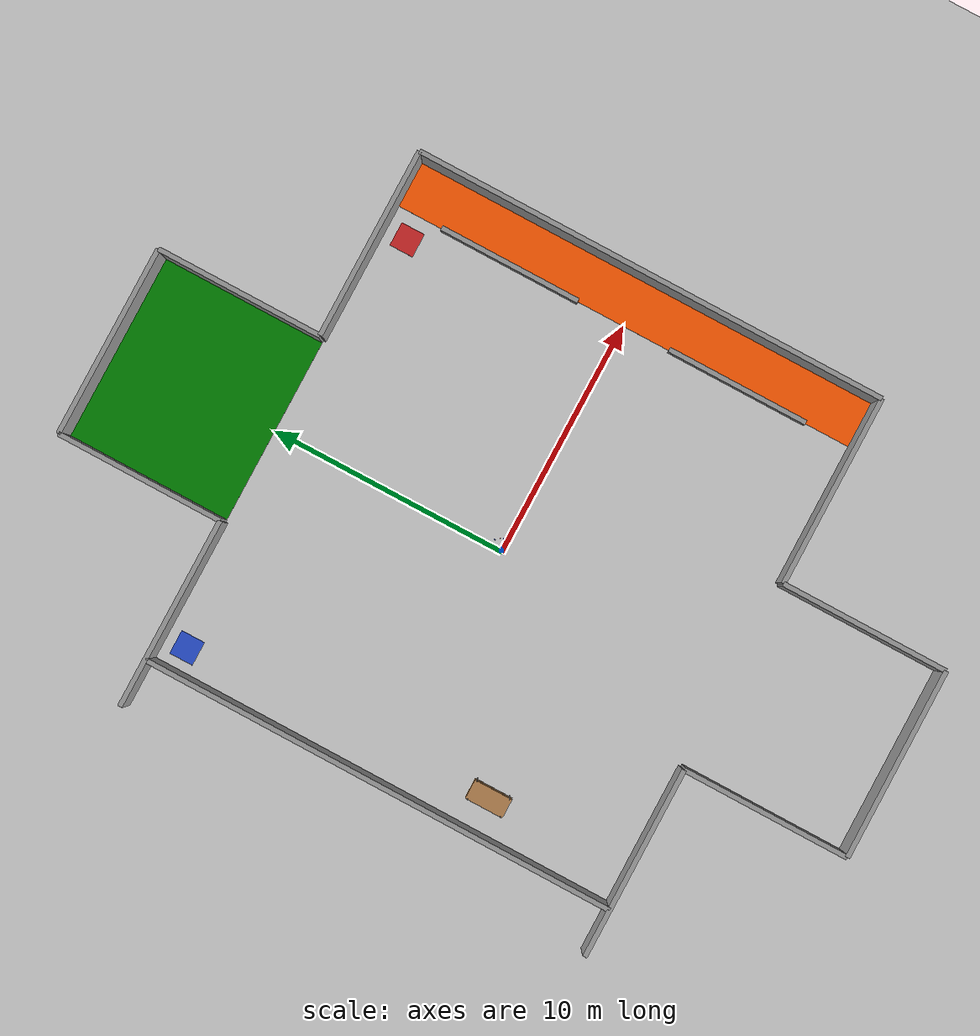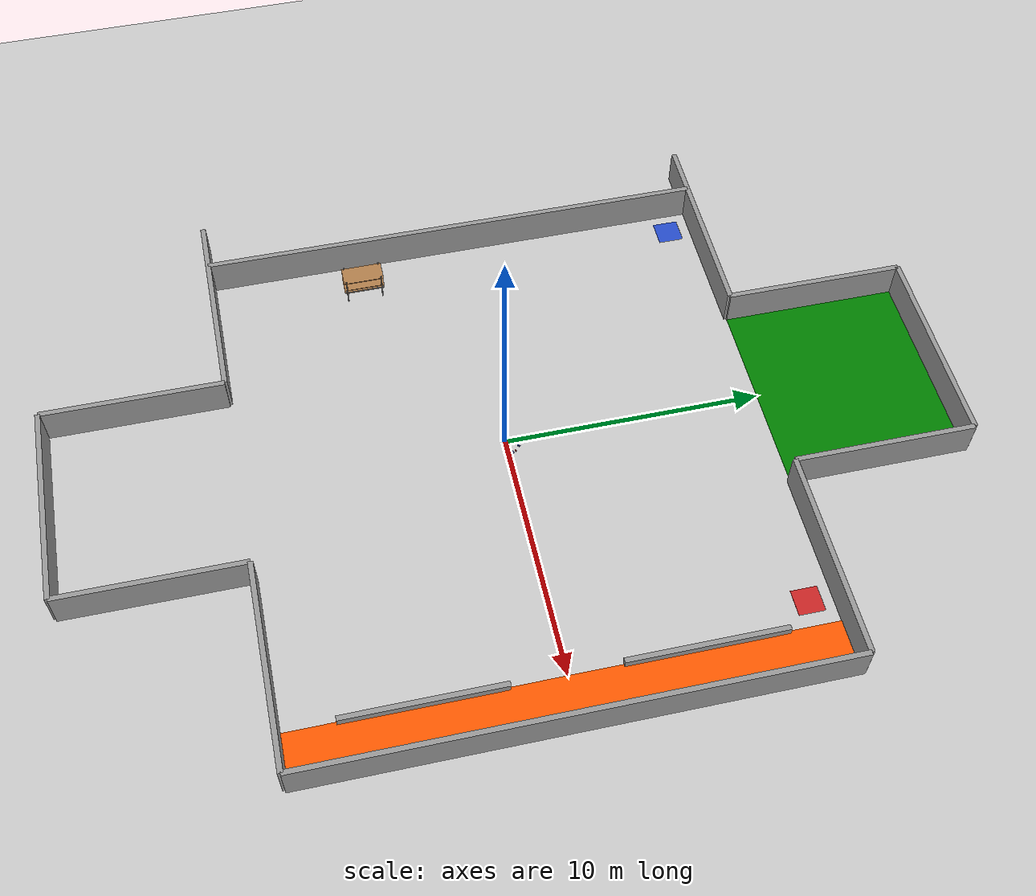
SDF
<sdf version="1.7">
 <world name="default">
  <model name="ground_plane">
   <static>1</static>
   <link name="link">
    <collision name="collision">
     <geometry><plane><normal>0 0 1</normal><size>100 100</size></plane></geometry>
     <surface>
      <contact><collide_bitmask>65535</collide_bitmask></contact>
      <friction><ode><mu>100</mu><mu2>50</mu2></ode></friction>
     </surface>
    </collision>
    <visual name="visual">
     <cast_shadows>0</cast_shadows>
     <geometry><plane><normal>0 0 1</normal><size>100 100</size></plane></geometry>
     <material>
      <script><uri>file://media/materials/scripts/gazebo.material</uri><name>Gazebo/Grey</name></script>
     </material>
    </visual>
   </link>
  </model>
  <model name="warehouse_walls">
   <static>1</static>
   <link name="wall1_link">
    <pose>-10 0 0 0 -0 1.57</pose>
    <collision name="collision"><geometry><box><size>20 0.2 2.8</size></box></geometry></collision>
    <visual name="wall1_visual">
     <cast_shadows>0</cast_shadows>
     <geometry><box><size>20 0.2 2.8</size></box></geometry>
     <material>
      <script>
       <uri>model://grey_wall/materials/scripts</uri>
       <uri>model://grey_wall/materials/textures</uri>
       <name>vrc/grey_wall</name>
      </script>
     </material>
    </visual>
   </link>
   <link name="wall2_link2">
    <pose>8 -10 0 0 -0 0</pose>
    <collision name="wall2_collision2"><geometry><box><size>8 0.2 2.8</size></box></geometry></collision>
    <visual name="wall2_visual2">
     <cast_shadows>0</cast_shadows>
     <geometry><box><size>8 0.2 2.8</size></box></geometry>
     <material>
      <script>
       <uri>model://grey_wall/materials/scripts</uri>
       <uri>model://grey_wall/materials/textures</uri>
       <name>vrc/grey_wall</name>
      </script>
     </material>
    </visual>
   </link>
   <link name="wall2_link3">
    <pose>4 -13.5 0 0 -0 1.57</pose>
    <collision name="wall2_collision3"><geometry><box><size>7 0.2 2.8</size></box></geometry></collision>
    <visual name="wall2_visual3">
     <cast_shadows>0</cast_shadows>
     <geometry><box><size>7 0.2 2.8</size></box></geometry>
     <material>
      <script>
       <uri>model://grey_wall/materials/scripts</uri>
       <uri>model://grey_wall/materials/textures</uri>
       <name>vrc/grey_wall</name>
      </script>
     </material>
    </visual>
   </link>
   <link name="wall2_link4">
    <pose>0 -17 0 0 -0 0</pose>
    <collision name="wall2_collision4"><geometry><box><size>8 0.2 2.8</size></box></geometry></collision>
    <visual name="wall2_visual4">
     <cast_shadows>0</cast_shadows>
     <geometry><box><size>8 0.2 2.8</size></box></geometry>
     <material>
      <script>
       <uri>model://grey_wall/materials/scripts</uri>
       <uri>model://grey_wall/materials/textures</uri>
       <name>vrc/grey_wall</name>
      </script>
     </material>
    </visual>
   </link>
   <link name="wall2_link5">
    <pose>-4 -13.5 0 0 -0 1.57</pose>
    <collision name="wall2_collision5"><geometry><box><size>7 0.2 2.8</size></box></geometry></collision>
    <visual name="wall2_visual5">
     <cast_shadows>0</cast_shadows>
     <geometry><box><size>7 0.2 2.8</size></box></geometry>
     <material>
      <script>
       <uri>model://grey_wall/materials/scripts</uri>
       <uri>model://grey_wall/materials/textures</uri>
       <name>vrc/grey_wall</name>
      </script>
     </material>
    </visual>
   </link>
   <link name="wall2_link6">
    <pose>-8 -10 0 0 -0 0</pose>
    <collision name="wall2_collision6"><geometry><box><size>8 0.2 2.8</size></box></geometry></collision>
    <visual name="wall2_visual6">
     <cast_shadows>0</cast_shadows>
     <geometry><box><size>8 0.2 2.8</size></box></geometry>
     <material>
      <script>
       <uri>model://grey_wall/materials/scripts</uri>
       <uri>model://grey_wall/materials/textures</uri>
       <name>vrc/grey_wall</name>
      </script>
     </material>
    </visual>
   </link>
   <link name="output_area">
    <pose>0 13.5 0 0 -0 0</pose>
    <visual name="visual_output_area">
     <cast_shadows>0</cast_shadows>
     <geometry><plane><normal>0 0 1</normal><size>8 7</size></plane></geometry>
     <material>
      <ambient>0 0.5 0 1</ambient>
      <diffuse>0 0.5 0 1</diffuse>
      <specular>0 0 0 1</specular>
      <emissive>0 0 0 0</emissive>
     </material>
    </visual>
   </link>
   <link name="wall3_link2">
    <pose>8 10 0 0 -0 0</pose>
    <collision name="wall3_collision2"><geometry><box><size>8 0.2 2.8</size></box></geometry></collision>
    <visual name="wall3_visual2">
     <cast_shadows>0</cast_shadows>
     <geometry><box><size>8 0.2 2.8</size></box></geometry>
     <material>
      <script>
       <uri>model://grey_wall/materials/scripts</uri>
       <uri>model://grey_wall/materials/textures</uri>
       <name>vrc/grey_wall</name>
      </script>
     </material>
    </visual>
   </link>
   <link name="wall3_link3">
    <pose>4 13.5 0 0 -0 1.57</pose>
    <collision name="wall3_collision3"><geometry><box><size>7 0.2 2.8</size></box></geometry></collision>
    <visual name="wall3_visual3">
     <cast_shadows>0</cast_shadows>
     <geometry><box><size>7 0.2 2.8</size></box></geometry>
     <material>
      <script>
       <uri>model://grey_wall/materials/scripts</uri>
       <uri>model://grey_wall/materials/textures</uri>
       <name>vrc/grey_wall</name>
      </script>
     </material>
    </visual>
   </link>
   <link name="wall3_link4">
    <pose>0 17 0 0 -0 0</pose>
    <collision name="wall3_collision4"><geometry><box><size>8 0.2 2.8</size></box></geometry></collision>
    <visual name="wall3_visual4">
     <cast_shadows>0</cast_shadows>
     <geometry><box><size>8 0.2 2.8</size></box></geometry>
     <material>
      <script>
       <uri>model://grey_wall/materials/scripts</uri>
       <uri>model://grey_wall/materials/textures</uri>
       <name>vrc/grey_wall</name>
      </script>
     </material>
    </visual>
   </link>
   <link name="wall3_link5">
    <pose>-4 13.5 0 0 -0 1.57</pose>
    <collision name="wall3_collision5"><geometry><box><size>7 0.2 2.8</size></box></geometry></collision>
    <visual name="wall3_visual5">
     <cast_shadows>0</cast_shadows>
     <geometry><box><size>7 0.2 2.8</size></box></geometry>
     <material>
      <script>
       <uri>model://grey_wall/materials/scripts</uri>
       <uri>model://grey_wall/materials/textures</uri>
       <name>vrc/grey_wall</name>
      </script>
     </material>
    </visual>
   </link>
   <link name="wall3_link6">
    <pose>-8 10 0 0 -0 0</pose>
    <collision name="wall3_collision6"><geometry><box><size>8 0.2 2.8</size></box></geometry></collision>
    <visual name="wall3_visual6">
     <cast_shadows>0</cast_shadows>
     <geometry><box><size>8 0.2 2.8</size></box></geometry>
     <material>
      <script>
       <uri>model://grey_wall/materials/scripts</uri>
       <uri>model://grey_wall/materials/textures</uri>
       <name>vrc/grey_wall</name>
      </script>
     </material>
    </visual>
   </link>
   <link name="wall4_link">
    <pose>12 0 0 0 -0 1.57</pose>
    <collision name="wall4_collision"><geometry><box><size>20 0.2 2.8</size></box></geometry></collision>
    <visual name="wall4_visual">
     <cast_shadows>0</cast_shadows>
     <geometry><box><size>20 0.2 2.8</size></box></geometry>
     <material>
      <script>
       <uri>model://grey_wall/materials/scripts</uri>
       <uri>model://grey_wall/materials/textures</uri>
       <name>vrc/grey_wall</name>
      </script>
     </material>
    </visual>
   </link>
   <link name="wall5_link1">
    <pose>10 -5 0 0 -0 1.57</pose>
    <collision name="wall5_collision1"><geometry><box><size>6 0.2 0.6</size></box></geometry></collision>
    <visual name="wall5_visual1">
     <cast_shadows>0</cast_shadows>
     <geometry><box><size>6 0.2 0.6</size></box></geometry>
     <material>
      <script>
       <uri>model://grey_wall/materials/scripts</uri>
       <uri>model://grey_wall/materials/textures</uri>
       <name>vrc/grey_wall</name>
      </script>
     </material>
    </visual>
   </link>
   <link name="wall5_link2">
    <pose>10 5 0 0 -0 1.57</pose>
    <collision name="wall5_collision2"><geometry><box><size>6 0.2 0.6</size></box></geometry></collision>
    <visual name="wall5_visual2">
     <cast_shadows>0</cast_shadows>
     <geometry><box><size>6 0.2 0.6</size></box></geometry>
     <material>
      <script>
       <uri>model://grey_wall/materials/scripts</uri>
       <uri>model://grey_wall/materials/textures</uri>
       <name>vrc/grey_wall</name>
      </script>
     </material>
    </visual>
   </link>
   <link name="resting_area">
    <pose>11 0 0 0 -0 1.57</pose>
    <visual name="visual_resting_area">
     <cast_shadows>0</cast_shadows>
     <geometry><plane><normal>0 0 1</normal><size>20 2</size></plane></geometry>
     <material>
      <ambient>1 0.35 0 1</ambient>
      <diffuse>1 0.35 0 1</diffuse>
      <specular>0 0 0 1</specular>
      <emissive>0 0 0 0</emissive>
     </material>
    </visual>
   </link>
  </model>
  <model name="red1">
   <link name="link">
    <inertial>
     <mass>0.1</mass>
     <inertia><ixx>0.16667</ixx><ixy>0</ixy><ixz>0</ixz><iyy>0.16667</iyy><iyz>0</iyz><izz>0.16667</izz></inertia>
    </inertial>
    <visual name="visual">
     <geometry><box><size>0.09433 0.024 0.07</size></box></geometry>
     <material>
      <script><name>Gazebo/Red</name><uri>file://media/materials/scripts/gazebo.material</uri></script>
      <shader type="vertex"><normal_map>__default__</normal_map></shader>
     </material>
    </visual>
    <collision name="collision">
     <max_contacts>50</max_contacts>
     <geometry><box><size>0.09433 0.024 0.07</size></box></geometry>
     <surface>
      <friction>
       <ode><mu>0.998</mu><mu2>0.998</mu2><fdir1>0 0 0</fdir1><slip1>0</slip1><slip2>0</slip2></ode>
      </friction>
      <bounce><restitution_coefficient>0</restitution_coefficient><threshold>100000</threshold></bounce>
      <contact>
       <ode>
        <soft_cfm>0</soft_cfm>
        <soft_erp>0.2</soft_erp>
        <kp>100000</kp>
        <kd>1</kd>
        <max_vel>100</max_vel>
        <min_depth>0.001</min_depth>
       </ode>
      </contact>
     </surface>
    </collision>
   </link>
   <static>0</static>
   <allow_auto_disable>0</allow_auto_disable>
   <pose>0.583518 0.007 6e-06 6e-06 -4.8e-05 -2.1e-05</pose>
  </model>
  <model name="red3">
   <link name="link">
    <inertial>
     <mass>0.1</mass>
     <inertia><ixx>0.16667</ixx><ixy>0</ixy><ixz>0</ixz><iyy>0.16667</iyy><iyz>0</iyz><izz>0.16667</izz></inertia>
    </inertial>
    <visual name="visual">
     <geometry><box><size>0.09433 0.024 0.07</size></box></geometry>
     <material>
      <script><name>Gazebo/Red</name><uri>file://media/materials/scripts/gazebo.material</uri></script>
      <shader type="vertex"><normal_map>__default__</normal_map></shader>
     </material>
    </visual>
    <collision name="collision">
     <max_contacts>50</max_contacts>
     <geometry><box><size>0.09433 0.024 0.07</size></box></geometry>
     <surface>
      <friction>
       <ode><mu>0.998</mu><mu2>0.998</mu2><fdir1>0 0 0</fdir1><slip1>0</slip1><slip2>0</slip2></ode>
      </friction>
      <bounce><restitution_coefficient>0</restitution_coefficient><threshold>100000</threshold></bounce>
      <contact>
       <ode>
        <soft_cfm>0</soft_cfm>
        <soft_erp>0.2</soft_erp>
        <kp>100000</kp>
        <kd>1</kd>
        <max_vel>100</max_vel>
        <min_depth>0.001</min_depth>
       </ode>
      </contact>
     </surface>
    </collision>
   </link>
   <static>0</static>
   <allow_auto_disable>0</allow_auto_disable>
   <pose>0.502 0.314314 6e-06 6e-06 -4.8e-05 0.476497</pose>
  </model>
  <model name="blue2">
   <link name="link">
    <inertial>
     <mass>0.1</mass>
     <inertia><ixx>0.16667</ixx><ixy>0</ixy><ixz>0</ixz><iyy>0.16667</iyy><iyz>0</iyz><izz>0.16667</izz></inertia>
    </inertial>
    <visual name="visual">
     <geometry><box><size>0.09433 0.024 0.07</size></box></geometry>
     <material>
      <script><name>Gazebo/Blue</name><uri>file://media/materials/scripts/gazebo.material</uri></script>
      <shader type="vertex"><normal_map>__default__</normal_map></shader>
     </material>
    </visual>
    <collision name="collision">
     <max_contacts>50</max_contacts>
     <geometry><box><size>0.09433 0.024 0.07</size></box></geometry>
     <surface>
      <friction>
       <ode><mu>0.998</mu><mu2>0.998</mu2><fdir1>0 0 0</fdir1><slip1>0</slip1><slip2>0</slip2></ode>
      </friction>
      <bounce><restitution_coefficient>0</restitution_coefficient><threshold>100000</threshold></bounce>
      <contact>
       <ode>
        <soft_cfm>0</soft_cfm>
        <soft_erp>0.2</soft_erp>
        <kp>100000</kp>
        <kd>1</kd>
        <max_vel>100</max_vel>
        <min_depth>0.001</min_depth>
       </ode>
      </contact>
     </surface>
    </collision>
   </link>
   <static>0</static>
   <allow_auto_disable>0</allow_auto_disable>
   <pose>0.551327 0.194528 0.033998 4.2e-05 0 0.318925</pose>
  </model>
  <model name="blue4">
   <link name="link">
    <inertial>
     <mass>0.1</mass>
     <inertia><ixx>0.16667</ixx><ixy>0</ixy><ixz>0</ixz><iyy>0.16667</iyy><iyz>0</iyz><izz>0.16667</izz></inertia>
    </inertial>
    <visual name="visual">
     <geometry><box><size>0.09433 0.024 0.07</size></box></geometry>
     <material>
      <script><name>Gazebo/Blue</name><uri>file://media/materials/scripts/gazebo.material</uri></script>
      <shader type="vertex"><normal_map>__default__</normal_map></shader>
     </material>
    </visual>
    <collision name="collision">
     <max_contacts>50</max_contacts>
     <geometry><box><size>0.09433 0.024 0.07</size></box></geometry>
     <surface>
      <friction>
       <ode><mu>0.998</mu><mu2>0.998</mu2><fdir1>0 0 0</fdir1><slip1>0</slip1><slip2>0</slip2></ode>
      </friction>
      <bounce><restitution_coefficient>0</restitution_coefficient><threshold>100000</threshold></bounce>
      <contact>
       <ode>
        <soft_cfm>0</soft_cfm>
        <soft_erp>0.2</soft_erp>
        <kp>100000</kp>
        <kd>1</kd>
        <max_vel>100</max_vel>
        <min_depth>0.001</min_depth>
       </ode>
      </contact>
     </surface>
    </collision>
   </link>
   <static>0</static>
   <allow_auto_disable>0</allow_auto_disable>
   <pose>0.326427 0.475072 0.033998 4.2e-05 -0 0.9453</pose>
  </model>
  <model name="destination_1">
   <link name="link">
    <inertial>
     <mass>0.1</mass>
     <inertia>
      <ixx>0.166667</ixx>
      <ixy>0</ixy>
      <ixz>0</ixz>
      <iyy>0.166667</iyy>
      <iyz>0</iyz>
      <izz>0.166667</izz>
     </inertia>
    </inertial>
    <visual name="visual">
     <geometry><box><size>1 1 0.001</size></box></geometry>
     <material>
      <script><name>Gazebo/Blue</name><uri>file://media/materials/scripts/gazebo.material</uri></script>
      <shader type="vertex"><normal_map>__default__</normal_map></shader>
     </material>
    </visual>
    <collision name="collision">
     <geometry><box><size>1 1 0</size></box></geometry>
     <surface>
      <friction>
       <ode><mu>0.998</mu><mu2>0.998</mu2><fdir1>0 0 0</fdir1><slip1>0</slip1><slip2>0</slip2></ode>
      </friction>
      <bounce><restitution_coefficient>0</restitution_coefficient><threshold>100000</threshold></bounce>
      <contact>
       <ode>
        <soft_cfm>0</soft_cfm>
        <soft_erp>0.2</soft_erp>
        <kp>100000</kp>
        <kd>1</kd>
        <max_vel>100</max_vel>
        <min_depth>0.001</min_depth>
       </ode>
      </contact>
     </surface>
    </collision>
   </link>
   <static>1</static>
   <pose>-9 9 0 0 -0 0</pose>
  </model>
  <model name="destination_2">
   <link name="link">
    <inertial>
     <mass>0.1</mass>
     <inertia>
      <ixx>0.166667</ixx>
      <ixy>0</ixy>
      <ixz>0</ixz>
      <iyy>0.166667</iyy>
      <iyz>0</iyz>
      <izz>0.166667</izz>
     </inertia>
    </inertial>
    <visual name="visual">
     <geometry><box><size>1 1 0.001</size></box></geometry>
     <material>
      <script><name>Gazebo/Red</name><uri>file://media/materials/scripts/gazebo.material</uri></script>
      <shader type="vertex"><normal_map>__default__</normal_map></shader>
     </material>
    </visual>
    <collision name="collision">
     <geometry><box><size>1 1 0</size></box></geometry>
     <surface>
      <friction>
       <ode><mu>0.998</mu><mu2>0.998</mu2><fdir1>0 0 0</fdir1><slip1>0</slip1><slip2>0</slip2></ode>
      </friction>
      <bounce><restitution_coefficient>0</restitution_coefficient><threshold>100000</threshold></bounce>
      <contact>
       <ode>
        <soft_cfm>0</soft_cfm>
        <soft_erp>0.2</soft_erp>
        <kp>100000</kp>
        <kd>1</kd>
        <max_vel>100</max_vel>
        <min_depth>0.001</min_depth>
       </ode>
      </contact>
     </surface>
    </collision>
   </link>
   <static>1</static>
   <pose>9 9 0 0 -0 0</pose>
  </model>
  <model name="pallet_set0_clone_3">
   <link name="warehouse_pallet::warehouse_pallet::link">
    <pose>0 0 0 0 -0 1.57</pose>
    <inertial>
     <inertia>
      <ixx>0.0267042</ixx>
      <ixy>0</ixy>
      <ixz>0</ixz>
      <iyy>0.0937875</iyy>
      <iyz>0</iyz>
      <izz>0.120417</izz>
     </inertia>
     <mass>0.1</mass>
    </inertial>
    <visual name="front_left_leg">
     <pose>0.7 0.38 0.5 0 -0 0</pose>
     <geometry><cylinder><radius>0.02</radius><length>1.2</length></cylinder></geometry>
     <material>
      <script><uri>file://media/materials/scripts/gazebo.material</uri><name>Gazebo/Grey</name></script>
      <shader type="pixel"><normal_map>__default__</normal_map></shader>
      <ambient>0.3 0.3 0.3 1</ambient>
      <diffuse>0.7 0.7 0.7 1</diffuse>
      <specular>0.01 0.01 0.01 1</specular>
      <emissive>0 0 0 1</emissive>
     </material>
    </visual>
    <visual name="back_left_leg">
     <pose>-0.7 0.38 0.5 0 -0 0</pose>
     <geometry><cylinder><radius>0.02</radius><length>1.2</length></cylinder></geometry>
     <material>
      <script><uri>file://media/materials/scripts/gazebo.material</uri><name>Gazebo/Grey</name></script>
      <shader type="pixel"><normal_map>__default__</normal_map></shader>
      <ambient>0.3 0.3 0.3 1</ambient>
      <diffuse>0.7 0.7 0.7 1</diffuse>
      <specular>0.01 0.01 0.01 1</specular>
      <emissive>0 0 0 1</emissive>
     </material>
    </visual>
    <visual name="holding1_visual">
     <pose>0 0.39 0.45 0 -0 0</pose>
     <geometry><box><size>1.6 0.02 0.05</size></box></geometry>
     <material>
      <script><uri>file://media/materials/scripts/gazebo.material</uri><name>Gazebo/Grey</name></script>
      <shader type="pixel"><normal_map>__default__</normal_map></shader>
      <ambient>0.3 0.3 0.3 1</ambient>
      <diffuse>0.7 0.7 0.7 1</diffuse>
      <specular>0.01 0.01 0.01 1</specular>
      <emissive>0 0 0 1</emissive>
     </material>
    </visual>
    <visual name="visual1">
     <pose>0 0 0.45 0 -0 0</pose>
     <geometry><box><size>1.6 0.8 0.03</size></box></geometry>
     <material>
      <script><uri>file://media/materials/scripts/gazebo.material</uri><name>Gazebo/Wood</name></script>
      <shader type="pixel"><normal_map>__default__</normal_map></shader>
      <ambient>1 1 1 1</ambient>
      <diffuse>1 1 1 1</diffuse>
      <specular>0.2 0.2 0.2 1</specular>
      <emissive>0 0 0 1</emissive>
     </material>
    </visual>
    <visual name="holding2_visual">
     <pose>0 -0.39 0.45 0 -0 0</pose>
     <geometry><box><size>1.6 0.02 0.05</size></box></geometry>
     <material>
      <script><uri>file://media/materials/scripts/gazebo.material</uri><name>Gazebo/Grey</name></script>
      <shader type="pixel"><normal_map>__default__</normal_map></shader>
      <ambient>0.3 0.3 0.3 1</ambient>
      <diffuse>0.7 0.7 0.7 1</diffuse>
      <specular>0.01 0.01 0.01 1</specular>
      <emissive>0 0 0 1</emissive>
     </material>
    </visual>
    <visual name="holding3_visual">
     <pose>0.735 0 0.45 0 -0 1.57</pose>
     <geometry><box><size>0.8 0.02 0.05</size></box></geometry>
     <material>
      <script><uri>file://media/materials/scripts/gazebo.material</uri><name>Gazebo/Grey</name></script>
      <shader type="pixel"><normal_map>__default__</normal_map></shader>
      <ambient>0.3 0.3 0.3 1</ambient>
      <diffuse>0.7 0.7 0.7 1</diffuse>
      <specular>0.01 0.01 0.01 1</specular>
      <emissive>0 0 0 1</emissive>
     </material>
    </visual>
    <visual name="holding4_visual">
     <pose>-0.735 0 0.45 0 -0 1.57</pose>
     <geometry><box><size>0.8 0.02 0.05</size></box></geometry>
     <material>
      <script><uri>file://media/materials/scripts/gazebo.material</uri><name>Gazebo/Grey</name></script>
      <shader type="pixel"><normal_map>__default__</normal_map></shader>
      <ambient>0.3 0.3 0.3 1</ambient>
      <diffuse>0.7 0.7 0.7 1</diffuse>
      <specular>0.01 0.01 0.01 1</specular>
      <emissive>0 0 0 1</emissive>
     </material>
    </visual>
    <visual name="visual2">
     <pose>0 0 0.6 0 -0 0</pose>
     <geometry><box><size>1.6 0.8 0.03</size></box></geometry>
     <material>
      <script><uri>file://media/materials/scripts/gazebo.material</uri><name>Gazebo/Wood</name></script>
      <shader type="pixel"><normal_map>__default__</normal_map></shader>
      <ambient>1 1 1 1</ambient>
      <diffuse>1 1 1 1</diffuse>
      <specular>0.2 0.2 0.2 1</specular>
      <emissive>0 0 0 1</emissive>
     </material>
    </visual>
    <visual name="visual3">
     <pose>0 0 1 0 -0 0</pose>
     <geometry><box><size>1.6 0.8 0.03</size></box></geometry>
     <material>
      <script><uri>file://media/materials/scripts/gazebo.material</uri><name>Gazebo/Wood</name></script>
      <shader type="pixel"><normal_map>__default__</normal_map></shader>
      <ambient>1 1 1 1</ambient>
      <diffuse>1 1 1 1</diffuse>
      <specular>0.2 0.2 0.2 1</specular>
      <emissive>0 0 0 1</emissive>
     </material>
    </visual>
    <visual name="back_right_leg">
     <pose>-0.7 -0.38 0.5 0 -0 0</pose>
     <geometry><cylinder><radius>0.02</radius><length>1.2</length></cylinder></geometry>
     <material>
      <script><uri>file://media/materials/scripts/gazebo.material</uri><name>Gazebo/Grey</name></script>
      <shader type="pixel"><normal_map>__default__</normal_map></shader>
      <ambient>0.3 0.3 0.3 1</ambient>
      <diffuse>0.7 0.7 0.7 1</diffuse>
      <specular>0.01 0.01 0.01 1</specular>
      <emissive>0 0 0 1</emissive>
     </material>
    </visual>
    <visual name="front_right_leg">
     <pose>0.7 -0.38 0.5 0 -0 0</pose>
     <geometry><cylinder><radius>0.02</radius><length>1.2</length></cylinder></geometry>
     <material>
      <script><uri>file://media/materials/scripts/gazebo.material</uri><name>Gazebo/Grey</name></script>
      <shader type="pixel"><normal_map>__default__</normal_map></shader>
      <ambient>0.3 0.3 0.3 1</ambient>
      <diffuse>0.7 0.7 0.7 1</diffuse>
      <specular>0.01 0.01 0.01 1</specular>
      <emissive>0 0 0 1</emissive>
     </material>
    </visual>
    <collision name="surface1">
     <pose>0 0 0.45 0 -0 0</pose>
     <geometry><box><size>1.6 0.8 0.03</size></box></geometry>
     <surface>
      <friction>
       <ode><mu>20</mu><mu2>20</mu2><fdir1>0 0 0</fdir1><slip1>0</slip1><slip2>0</slip2></ode>
       <torsional>
        <coefficient>1</coefficient>
        <patch_radius>0</patch_radius>
        <surface_radius>0</surface_radius>
        <use_patch_radius>1</use_patch_radius>
        <ode><slip>0</slip></ode>
       </torsional>
      </friction>
      <bounce><restitution_coefficient>0</restitution_coefficient><threshold>1e+06</threshold></bounce>
      <contact>
       <collide_without_contact>0</collide_without_contact>
       <collide_without_contact_bitmask>1</collide_without_contact_bitmask>
       <collide_bitmask>1</collide_bitmask>
       <ode>
        <soft_cfm>0</soft_cfm>
        <soft_erp>0.2</soft_erp>
        <kp>1e+13</kp>
        <kd>1</kd>
        <max_vel>0.01</max_vel>
        <min_depth>0</min_depth>
       </ode>
       <bullet>
        <split_impulse>1</split_impulse>
        <split_impulse_penetration_threshold>-0.01</split_impulse_penetration_threshold>
        <soft_cfm>0</soft_cfm>
        <soft_erp>0.2</soft_erp>
        <kp>1e+13</kp>
        <kd>1</kd>
       </bullet>
      </contact>
     </surface>
    </collision>
    <collision name="holding1_collision">
     <pose>0 0.39 0.45 0 -0 0</pose>
     <geometry><box><size>1.6 0.02 0.05</size></box></geometry>
     <surface>
      <friction>
       <ode><mu>1e+09</mu><mu2>1e+09</mu2><fdir1>0 0 0</fdir1><slip1>0</slip1><slip2>0</slip2></ode>
       <torsional>
        <coefficient>1</coefficient>
        <patch_radius>0</patch_radius>
        <surface_radius>0</surface_radius>
        <use_patch_radius>1</use_patch_radius>
        <ode><slip>0</slip></ode>
       </torsional>
      </friction>
      <bounce><restitution_coefficient>0</restitution_coefficient><threshold>1e+06</threshold></bounce>
      <contact>
       <collide_without_contact>0</collide_without_contact>
       <collide_without_contact_bitmask>1</collide_without_contact_bitmask>
       <collide_bitmask>1</collide_bitmask>
       <ode>
        <soft_cfm>0</soft_cfm>
        <soft_erp>0.2</soft_erp>
        <kp>1e+13</kp>
        <kd>1</kd>
        <max_vel>0.01</max_vel>
        <min_depth>0</min_depth>
       </ode>
       <bullet>
        <split_impulse>1</split_impulse>
        <split_impulse_penetration_threshold>-0.01</split_impulse_penetration_threshold>
        <soft_cfm>0</soft_cfm>
        <soft_erp>0.2</soft_erp>
        <kp>1e+13</kp>
        <kd>1</kd>
       </bullet>
      </contact>
     </surface>
    </collision>
    <collision name="holding2_collision">
     <pose>0 -0.39 0.45 0 -0 0</pose>
     <geometry><box><size>1.6 0.02 0.05</size></box></geometry>
     <surface>
      <friction>
       <ode><mu>1e+09</mu><mu2>1e+09</mu2><fdir1>0 0 0</fdir1><slip1>0</slip1><slip2>0</slip2></ode>
       <torsional>
        <coefficient>1</coefficient>
        <patch_radius>0</patch_radius>
        <surface_radius>0</surface_radius>
        <use_patch_radius>1</use_patch_radius>
        <ode><slip>0</slip></ode>
       </torsional>
      </friction>
      <bounce><restitution_coefficient>0</restitution_coefficient><threshold>1e+06</threshold></bounce>
      <contact>
       <collide_without_contact>0</collide_without_contact>
       <collide_without_contact_bitmask>1</collide_without_contact_bitmask>
       <collide_bitmask>1</collide_bitmask>
       <ode>
        <soft_cfm>0</soft_cfm>
        <soft_erp>0.2</soft_erp>
        <kp>1e+13</kp>
        <kd>1</kd>
        <max_vel>0.01</max_vel>
        <min_depth>0</min_depth>
       </ode>
       <bullet>
        <split_impulse>1</split_impulse>
        <split_impulse_penetration_threshold>-0.01</split_impulse_penetration_threshold>
        <soft_cfm>0</soft_cfm>
        <soft_erp>0.2</soft_erp>
        <kp>1e+13</kp>
        <kd>1</kd>
       </bullet>
      </contact>
     </surface>
    </collision>
    <collision name="holding4_collision">
     <pose>-0.735 0 0.45 0 -0 1.57</pose>
     <geometry><box><size>0.8 0.02 0.05</size></box></geometry>
     <surface>
      <friction>
       <ode><mu>1e+09</mu><mu2>1e+09</mu2><fdir1>0 0 0</fdir1><slip1>0</slip1><slip2>0</slip2></ode>
       <torsional>
        <coefficient>1</coefficient>
        <patch_radius>0</patch_radius>
        <surface_radius>0</surface_radius>
        <use_patch_radius>1</use_patch_radius>
        <ode><slip>0</slip></ode>
       </torsional>
      </friction>
      <bounce><restitution_coefficient>0</restitution_coefficient><threshold>1e+06</threshold></bounce>
      <contact>
       <collide_without_contact>0</collide_without_contact>
       <collide_without_contact_bitmask>1</collide_without_contact_bitmask>
       <collide_bitmask>1</collide_bitmask>
       <ode>
        <soft_cfm>0</soft_cfm>
        <soft_erp>0.2</soft_erp>
        <kp>1e+13</kp>
        <kd>1</kd>
        <max_vel>0.01</max_vel>
        <min_depth>0</min_depth>
       </ode>
       <bullet>
        <split_impulse>1</split_impulse>
        <split_impulse_penetration_threshold>-0.01</split_impulse_penetration_threshold>
        <soft_cfm>0</soft_cfm>
        <soft_erp>0.2</soft_erp>
        <kp>1e+13</kp>
        <kd>1</kd>
       </bullet>
      </contact>
     </surface>
    </collision>
    <collision name="holding3_collision">
     <pose>0.735 0 0.45 0 -0 1.57</pose>
     <geometry><box><size>0.8 0.02 0.05</size></box></geometry>
     <surface>
      <friction>
       <ode><mu>1e+09</mu><mu2>1e+09</mu2><fdir1>0 0 0</fdir1><slip1>0</slip1><slip2>0</slip2></ode>
       <torsional>
        <coefficient>1</coefficient>
        <patch_radius>0</patch_radius>
        <surface_radius>0</surface_radius>
        <use_patch_radius>1</use_patch_radius>
        <ode><slip>0</slip></ode>
       </torsional>
      </friction>
      <bounce><restitution_coefficient>0</restitution_coefficient><threshold>1e+06</threshold></bounce>
      <contact>
       <collide_without_contact>0</collide_without_contact>
       <collide_without_contact_bitmask>1</collide_without_contact_bitmask>
       <collide_bitmask>1</collide_bitmask>
       <ode>
        <soft_cfm>0</soft_cfm>
        <soft_erp>0.2</soft_erp>
        <kp>1e+13</kp>
        <kd>1</kd>
        <max_vel>0.01</max_vel>
        <min_depth>0</min_depth>
       </ode>
       <bullet>
        <split_impulse>1</split_impulse>
        <split_impulse_penetration_threshold>-0.01</split_impulse_penetration_threshold>
        <soft_cfm>0</soft_cfm>
        <soft_erp>0.2</soft_erp>
        <kp>1e+13</kp>
        <kd>1</kd>
       </bullet>
      </contact>
     </surface>
    </collision>
    <collision name="surface3">
     <pose>0 0 1 0 -0 0</pose>
     <geometry><box><size>1.6 0.8 0.03</size></box></geometry>
     <surface>
      <friction>
       <ode><mu>2.5</mu><mu2>2.5</mu2><fdir1>0 0 0</fdir1><slip1>0</slip1><slip2>0</slip2></ode>
       <torsional>
        <coefficient>1</coefficient>
        <patch_radius>0</patch_radius>
        <surface_radius>0</surface_radius>
        <use_patch_radius>1</use_patch_radius>
        <ode><slip>0</slip></ode>
       </torsional>
      </friction>
      <bounce><restitution_coefficient>0</restitution_coefficient><threshold>1e+06</threshold></bounce>
      <contact>
       <collide_without_contact>0</collide_without_contact>
       <collide_without_contact_bitmask>1</collide_without_contact_bitmask>
       <collide_bitmask>1</collide_bitmask>
       <ode>
        <soft_cfm>0</soft_cfm>
        <soft_erp>0.2</soft_erp>
        <kp>1e+13</kp>
        <kd>1</kd>
        <max_vel>0.01</max_vel>
        <min_depth>0</min_depth>
       </ode>
       <bullet>
        <split_impulse>1</split_impulse>
        <split_impulse_penetration_threshold>-0.01</split_impulse_penetration_threshold>
        <soft_cfm>0</soft_cfm>
        <soft_erp>0.2</soft_erp>
        <kp>1e+13</kp>
        <kd>1</kd>
       </bullet>
      </contact>
     </surface>
    </collision>
    <collision name="surface2">
     <pose>0 0 0.6 0 -0 0</pose>
     <geometry><box><size>1.6 0.8 0.03</size></box></geometry>
     <surface>
      <friction>
       <ode><mu>2.5</mu><mu2>2.5</mu2><fdir1>0 0 0</fdir1><slip1>0</slip1><slip2>0</slip2></ode>
       <torsional>
        <coefficient>1</coefficient>
        <patch_radius>0</patch_radius>
        <surface_radius>0</surface_radius>
        <use_patch_radius>1</use_patch_radius>
        <ode><slip>0</slip></ode>
       </torsional>
      </friction>
      <bounce><restitution_coefficient>0</restitution_coefficient><threshold>1e+06</threshold></bounce>
      <contact>
       <collide_without_contact>0</collide_without_contact>
       <collide_without_contact_bitmask>1</collide_without_contact_bitmask>
       <collide_bitmask>1</collide_bitmask>
       <ode>
        <soft_cfm>0</soft_cfm>
        <soft_erp>0.2</soft_erp>
        <kp>1e+13</kp>
        <kd>1</kd>
        <max_vel>0.01</max_vel>
        <min_depth>0</min_depth>
       </ode>
       <bullet>
        <split_impulse>1</split_impulse>
        <split_impulse_penetration_threshold>-0.01</split_impulse_penetration_threshold>
        <soft_cfm>0</soft_cfm>
        <soft_erp>0.2</soft_erp>
        <kp>1e+13</kp>
        <kd>1</kd>
       </bullet>
      </contact>
     </surface>
    </collision>
    <collision name="front_right_leg">
     <pose>0.7 -0.38 0.5 0 -0 0</pose>
     <geometry><cylinder><radius>0.02</radius><length>1</length></cylinder></geometry>
     <surface>
      <friction>
       <ode><mu>0.1</mu><mu2>0.1</mu2><fdir1>0 0 0</fdir1><slip1>0</slip1><slip2>0</slip2></ode>
       <torsional>
        <coefficient>1</coefficient>
        <patch_radius>0</patch_radius>
        <surface_radius>0</surface_radius>
        <use_patch_radius>1</use_patch_radius>
        <ode><slip>0</slip></ode>
       </torsional>
      </friction>
      <bounce><restitution_coefficient>0</restitution_coefficient><threshold>1e+06</threshold></bounce>
      <contact>
       <collide_without_contact>0</collide_without_contact>
       <collide_without_contact_bitmask>1</collide_without_contact_bitmask>
       <collide_bitmask>1</collide_bitmask>
       <ode>
        <soft_cfm>0</soft_cfm>
        <soft_erp>0.2</soft_erp>
        <kp>1e+13</kp>
        <kd>1</kd>
        <max_vel>0.01</max_vel>
        <min_depth>0</min_depth>
       </ode>
       <bullet>
        <split_impulse>1</split_impulse>
        <split_impulse_penetration_threshold>-0.01</split_impulse_penetration_threshold>
        <soft_cfm>0</soft_cfm>
        <soft_erp>0.2</soft_erp>
        <kp>1e+13</kp>
        <kd>1</kd>
       </bullet>
      </contact>
     </surface>
    </collision>
    <collision name="back_left_leg">
     <pose>-0.7 0.38 0.5 0 -0 0</pose>
     <geometry><cylinder><radius>0.02</radius><length>1.2</length></cylinder></geometry>
     <surface>
      <friction>
       <ode><mu>0.1</mu><mu2>0.1</mu2><fdir1>0 0 0</fdir1><slip1>0</slip1><slip2>0</slip2></ode>
       <torsional>
        <coefficient>1</coefficient>
        <patch_radius>0</patch_radius>
        <surface_radius>0</surface_radius>
        <use_patch_radius>1</use_patch_radius>
        <ode><slip>0</slip></ode>
       </torsional>
      </friction>
      <bounce><restitution_coefficient>0</restitution_coefficient><threshold>1e+06</threshold></bounce>
      <contact>
       <collide_without_contact>0</collide_without_contact>
       <collide_without_contact_bitmask>1</collide_without_contact_bitmask>
       <collide_bitmask>1</collide_bitmask>
       <ode>
        <soft_cfm>0</soft_cfm>
        <soft_erp>0.2</soft_erp>
        <kp>1e+13</kp>
        <kd>1</kd>
        <max_vel>0.01</max_vel>
        <min_depth>0</min_depth>
       </ode>
       <bullet>
        <split_impulse>1</split_impulse>
        <split_impulse_penetration_threshold>-0.01</split_impulse_penetration_threshold>
        <soft_cfm>0</soft_cfm>
        <soft_erp>0.2</soft_erp>
        <kp>1e+13</kp>
        <kd>1</kd>
       </bullet>
      </contact>
     </surface>
    </collision>
    <collision name="front_left_leg">
     <pose>0.7 0.38 0.5 0 -0 0</pose>
     <geometry><cylinder><radius>0.02</radius><length>1.2</length></cylinder></geometry>
     <surface>
      <friction>
       <ode><mu>0.1</mu><mu2>0.1</mu2><fdir1>0 0 0</fdir1><slip1>0</slip1><slip2>0</slip2></ode>
       <torsional>
        <coefficient>1</coefficient>
        <patch_radius>0</patch_radius>
        <surface_radius>0</surface_radius>
        <use_patch_radius>1</use_patch_radius>
        <ode><slip>0</slip></ode>
       </torsional>
      </friction>
      <bounce><restitution_coefficient>0</restitution_coefficient><threshold>1e+06</threshold></bounce>
      <contact>
       <collide_without_contact>0</collide_without_contact>
       <collide_without_contact_bitmask>1</collide_without_contact_bitmask>
       <collide_bitmask>1</collide_bitmask>
       <ode>
        <soft_cfm>0</soft_cfm>
        <soft_erp>0.2</soft_erp>
        <kp>1e+13</kp>
        <kd>1</kd>
        <max_vel>0.01</max_vel>
        <min_depth>0</min_depth>
       </ode>
       <bullet>
        <split_impulse>1</split_impulse>
        <split_impulse_penetration_threshold>-0.01</split_impulse_penetration_threshold>
        <soft_cfm>0</soft_cfm>
        <soft_erp>0.2</soft_erp>
        <kp>1e+13</kp>
        <kd>1</kd>
       </bullet>
      </contact>
     </surface>
    </collision>
    <collision name="back_right_leg">
     <pose>-0.7 -0.38 0.5 0 -0 0</pose>
     <geometry><cylinder><radius>0.02</radius><length>1.2</length></cylinder></geometry>
     <surface>
      <friction>
       <ode><mu>0.1</mu><mu2>0.1</mu2><fdir1>0 0 0</fdir1><slip1>0</slip1><slip2>0</slip2></ode>
       <torsional>
        <coefficient>1</coefficient>
        <patch_radius>0</patch_radius>
        <surface_radius>0</surface_radius>
        <use_patch_radius>1</use_patch_radius>
        <ode><slip>0</slip></ode>
       </torsional>
      </friction>
      <bounce><restitution_coefficient>0</restitution_coefficient><threshold>1e+06</threshold></bounce>
      <contact>
       <collide_without_contact>0</collide_without_contact>
       <collide_without_contact_bitmask>1</collide_without_contact_bitmask>
       <collide_bitmask>1</collide_bitmask>
       <ode>
        <soft_cfm>0</soft_cfm>
        <soft_erp>0.2</soft_erp>
        <kp>1e+13</kp>
        <kd>1</kd>
        <max_vel>0.01</max_vel>
        <min_depth>0</min_depth>
       </ode>
       <bullet>
        <split_impulse>1</split_impulse>
        <split_impulse_penetration_threshold>-0.01</split_impulse_penetration_threshold>
        <soft_cfm>0</soft_cfm>
        <soft_erp>0.2</soft_erp>
        <kp>1e+13</kp>
        <kd>1</kd>
       </bullet>
      </contact>
     </surface>
    </collision>
   </link>
   <static>1</static>
   <pose>-8.49997 -3.99998 0.099305 -0.000174 0.000322 -0</pose>
  </model>
 </world>
</sdf>
